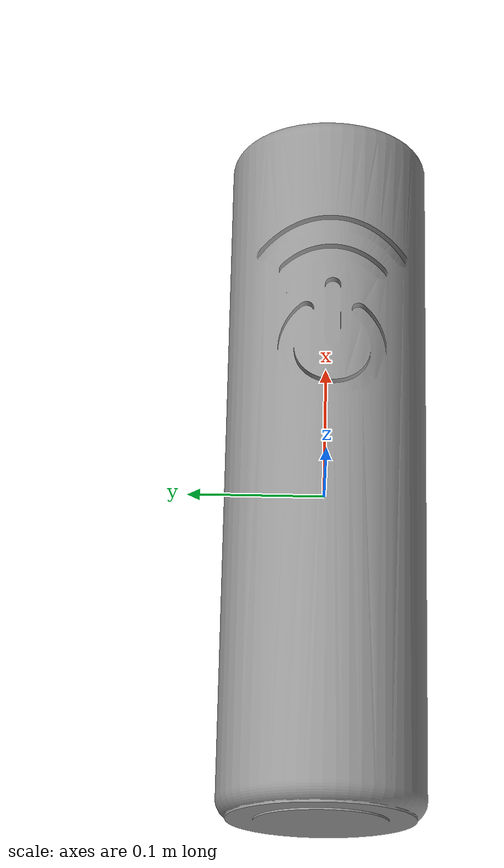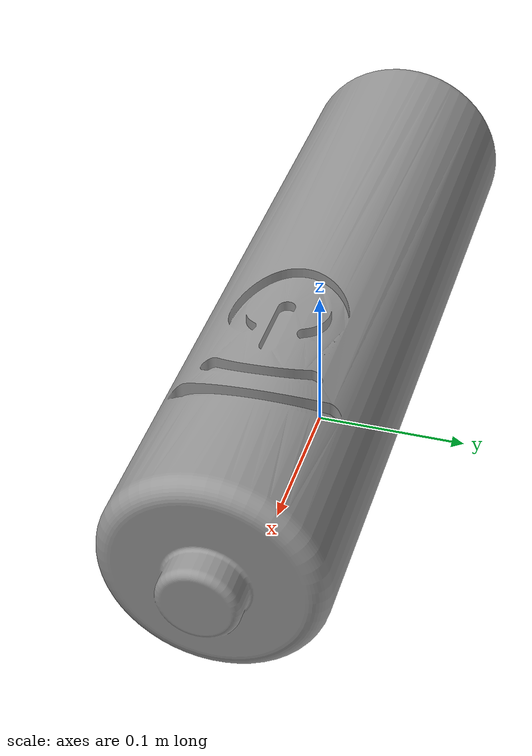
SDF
<?xml version="1.0" ?>
<sdf version="1.5">
  <model name="AA_battery">
    <pose>0 0 0.07 0 0 0</pose>
    <link name="link">
      <inertial>
        <mass>1</mass>
        <inertia>
          <ixx>0.01</ixx>
          <ixy>0</ixy>
          <ixz>0</ixz>
          <iyy>0.01</iyy>
          <iyz>0</iyz>
          <izz>0.01</izz>
        </inertia>
      </inertial>
      <collision name="collision">
        <pose>0 0 0 0 1.57 0</pose>
        <geometry>
          <cylinder>
            <radius>0.0682</radius>
            <length>0.483</length>
          </cylinder>
        </geometry>
      </collision>
      <visual name="visual">
        <pose>0 0 0.0 0 0 0</pose>
        <geometry>
          <mesh>
            <uri>model://AA_battery/meshes/AA_battery.dae</uri>
            <scale>0.01 0.01 0.01</scale>
          </mesh>
        </geometry>
        <material>
          <script>
            <uri>file://media/materials/scripts/gazebo.material</uri>
            <name>Gazebo/Grey</name>
          </script>
        </material>
      </visual>
    </link>
    <plugin filename="libPowerSourcePlugin.so" name="battery">
      <port>
        <name>positive</name>
        <type>electrical</type>
      </port>
      <port>
        <name>negative</name>
        <type>electrical</type>
      </port>
      <properties>
        <voltage>1.5</voltage>   <!-- Volts -->
       <capacity>0.30</capacity> <!-- Amp-hours  -->
        <current>0.1</current>   <!-- Amps -->
      </properties>
    </plugin>
  </model>
</sdf>
